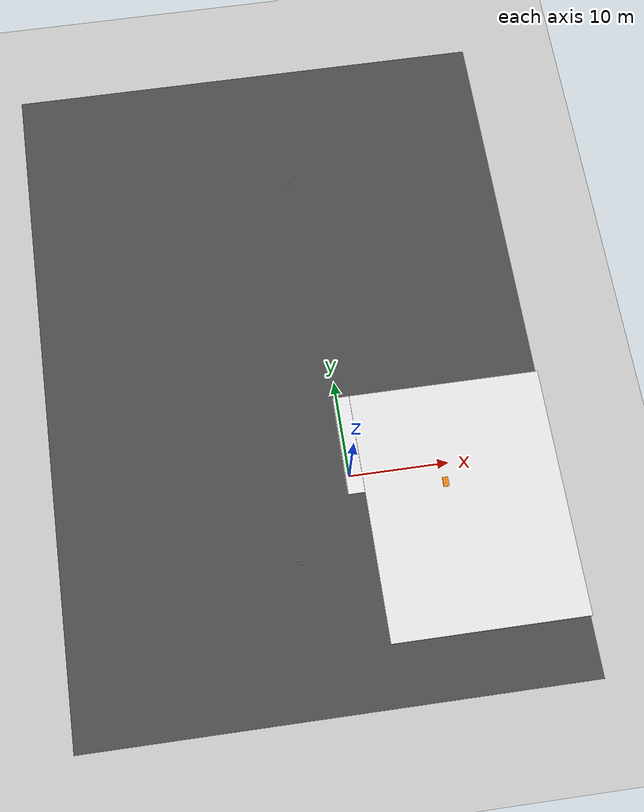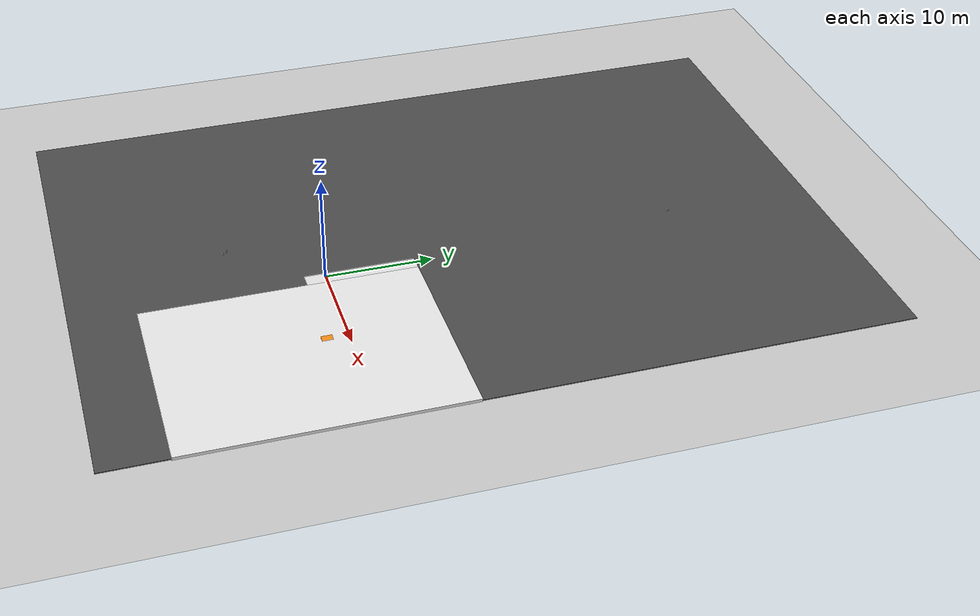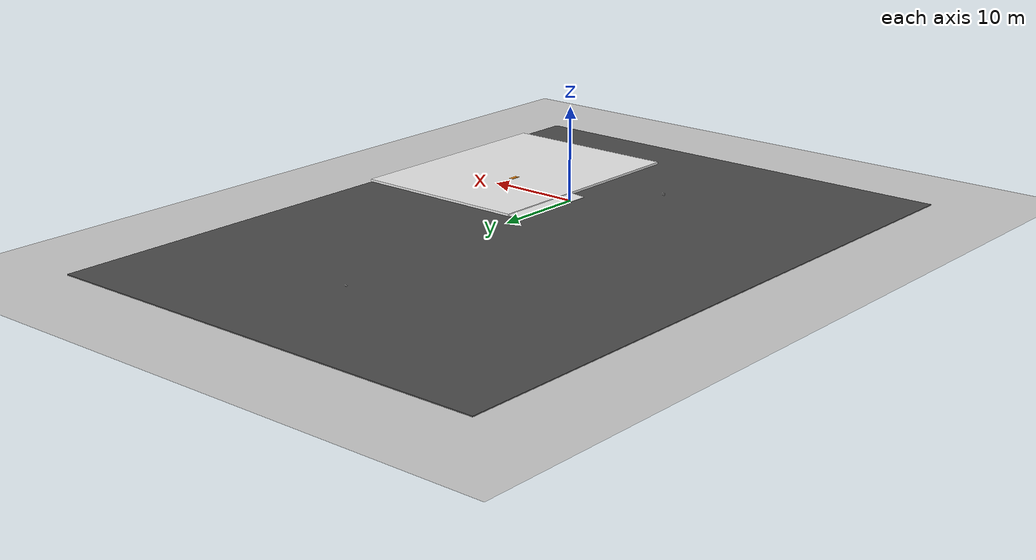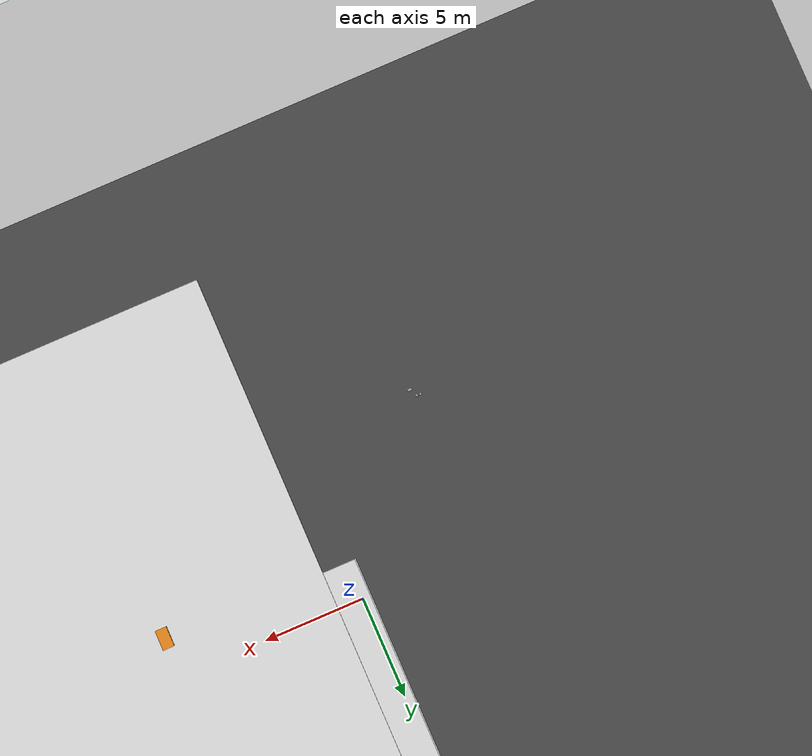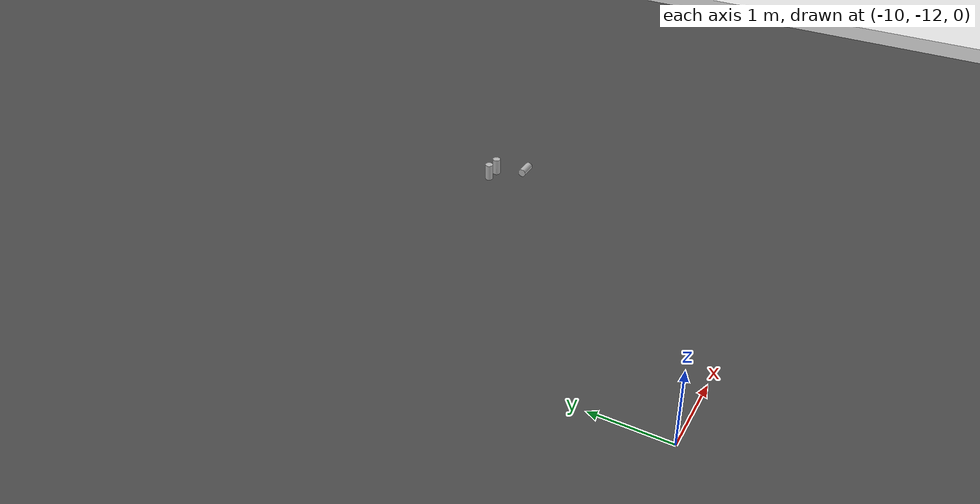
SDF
<sdf version="1.7">
 <world name="default">
  <light name="sun" type="directional">
   <pose>0 0 10 0 -0 0</pose>
   <diffuse>0.8 0.8 0.8 1</diffuse>
   <specular>0.2 0.2 0.2 1</specular>
   <attenuation>
    <range>1000</range>
    <constant>0.9</constant>
    <linear>0.01</linear>
    <quadratic>0.001</quadratic>
   </attenuation>
   <direction>-0.5 0.1 -0.9</direction>
   <spot><inner_angle>0</inner_angle><outer_angle>0</outer_angle><falloff>0</falloff></spot>
  </light>
  <model name="ground_plane">
   <static>1</static>
   <link name="link">
    <collision name="collision">
     <geometry><plane><normal>0 0 1</normal><size>100 100</size></plane></geometry>
     <surface>
      <contact><collide_bitmask>65535</collide_bitmask></contact>
      <friction><ode><mu>100</mu><mu2>50</mu2></ode></friction>
     </surface>
    </collision>
    <visual name="visual">
     <cast_shadows>0</cast_shadows>
     <geometry><plane><normal>0 0 1</normal><size>100 100</size></plane></geometry>
     <material>
      <script><uri>file://media/materials/scripts/gazebo.material</uri><name>Gazebo/Grey</name></script>
     </material>
    </visual>
   </link>
  </model>
  <gravity>0 0 -9.8</gravity>
  <magnetic_field>6e-06 2.3e-05 -4.2e-05</magnetic_field>
  <atmosphere type="adiabatic"/>
  <physics type="ode">
   <max_step_size>0.001</max_step_size>
   <real_time_factor>1</real_time_factor>
   <real_time_update_rate>1000</real_time_update_rate>
  </physics>
  <scene><ambient>0.4 0.4 0.4 1</ambient><background>0.7 0.7 0.7 1</background><shadows>1</shadows></scene>
  <spherical_coordinates>
   <surface_model>EARTH_WGS84</surface_model>
   <latitude_deg>0</latitude_deg>
   <longitude_deg>0</longitude_deg>
   <elevation>0</elevation>
   <heading_deg>0</heading_deg>
  </spherical_coordinates>
  <model name="kitchen_floor_clone">
   <link name="link">
    <inertial>
     <mass>1</mass>
     <inertia><ixx>1</ixx><ixy>0</ixy><ixz>0</ixz><iyy>1</iyy><iyz>0</iyz><izz>1</izz></inertia>
    </inertial>
    <visual name="visual">
     <geometry><box><size>19.4916 25.3453 0.288862</size></box></geometry>
     <material>
      <script><uri>file://media/materials/scripts/gazebo.material</uri><name>Gazebo/White</name></script>
      <shader type="pixel"><normal_map>__default__</normal_map></shader>
      <ambient>1 1 1 1</ambient>
      <diffuse>1 1 1 1</diffuse>
      <specular>0 0 0 1</specular>
      <emissive>0 0 0 1</emissive>
     </material>
    </visual>
    <collision name="collision">
     <geometry><box><size>19.4916 25.3453 0.288862</size></box></geometry>
     <surface>
      <friction>
       <ode><mu>1e+14</mu><mu2>1e+17</mu2><fdir1>0 0 0</fdir1><slip1>0</slip1><slip2>0</slip2></ode>
       <torsional>
        <coefficient>1</coefficient>
        <patch_radius>0</patch_radius>
        <surface_radius>0</surface_radius>
        <use_patch_radius>1</use_patch_radius>
        <ode><slip>0</slip></ode>
       </torsional>
      </friction>
      <bounce><restitution_coefficient>0</restitution_coefficient><threshold>1e+06</threshold></bounce>
      <contact>
       <collide_without_contact>0</collide_without_contact>
       <collide_without_contact_bitmask>1</collide_without_contact_bitmask>
       <collide_bitmask>1</collide_bitmask>
       <ode>
        <soft_cfm>0</soft_cfm>
        <soft_erp>0.2</soft_erp>
        <kp>1e+13</kp>
        <kd>1</kd>
        <max_vel>0.01</max_vel>
        <min_depth>0</min_depth>
       </ode>
       <bullet>
        <split_impulse>1</split_impulse>
        <split_impulse_penetration_threshold>-0.01</split_impulse_penetration_threshold>
        <soft_cfm>0</soft_cfm>
        <soft_erp>0.2</soft_erp>
        <kp>1e+13</kp>
        <kd>1</kd>
       </bullet>
      </contact>
     </surface>
    </collision>
   </link>
   <static>1</static>
   <pose>10.9999 -4.36608 0.160761 0 -0 0</pose>
  </model>
  <model name="asphalt_plane">
   <static>1</static>
   <link name="link">
    <collision name="collision"><geometry><box><size>49.8592 70.8248 0.1</size></box></geometry></collision>
    <visual name="visual">
     <cast_shadows>0</cast_shadows>
     <geometry><box><size>49.8592 70.8248 0.1</size></box></geometry>
     <material>
      <script>
       <uri>model://asphalt_plane/materials/scripts</uri>
       <uri>model://asphalt_plane/materials/textures</uri>
       <name>vrc/asphalt</name>
      </script>
     </material>
    </visual>
   </link>
   <pose>-4.35504 12.4315 0 0 -0 0</pose>
  </model>
  <model name="beer">
   <link name="link">
    <pose>0 0 0.115 0 -0 0</pose>
    <inertial>
     <mass>0.39</mass>
     <inertia><ixx>0.00058</ixx><ixy>0</ixy><ixz>0</ixz><iyy>0.00058</iyy><iyz>0</iyz><izz>0.00019</izz></inertia>
    </inertial>
    <collision name="collision">
     <geometry><cylinder><radius>0.055</radius><length>0.23</length></cylinder></geometry>
    </collision>
    <visual name="visual">
     <geometry><cylinder><radius>0.055</radius><length>0.23</length></cylinder></geometry>
     <material>
      <script>
       <uri>model://beer/materials/scripts</uri>
       <uri>model://beer/materials/textures</uri>
       <name>Beer/Diffuse</name>
      </script>
     </material>
    </visual>
   </link>
   <pose>-1.21363 33.6408 0.125 1.57079 1.01249 -1.76371</pose>
  </model>
  <model name="beer_0">
   <link name="link">
    <pose>0 0 0.115 0 -0 0</pose>
    <inertial>
     <mass>0.39</mass>
     <inertia><ixx>0.00058</ixx><ixy>0</ixy><ixz>0</ixz><iyy>0.00058</iyy><iyz>0</iyz><izz>0.00019</izz></inertia>
    </inertial>
    <collision name="collision">
     <geometry><cylinder><radius>0.055</radius><length>0.23</length></cylinder></geometry>
    </collision>
    <visual name="visual">
     <geometry><cylinder><radius>0.055</radius><length>0.23</length></cylinder></geometry>
     <material>
      <script>
       <uri>model://beer/materials/scripts</uri>
       <uri>model://beer/materials/textures</uri>
       <name>Beer/Diffuse</name>
      </script>
     </material>
    </visual>
   </link>
   <pose>-6.36612 -7.82661 0.050005 2.4e-05 9.1e-05 -3.2e-05</pose>
  </model>
  <model name="beer_0_clone">
   <link name="link">
    <pose>0 0 0.115 0 -0 0</pose>
    <inertial>
     <mass>0.39</mass>
     <inertia><ixx>0.00058</ixx><ixy>0</ixy><ixz>0</ixz><iyy>0.00058</iyy><iyz>0</iyz><izz>0.00019</izz></inertia>
    </inertial>
    <collision name="collision">
     <geometry><cylinder><radius>0.055</radius><length>0.23</length></cylinder></geometry>
    </collision>
    <visual name="visual">
     <geometry><cylinder><radius>0.055</radius><length>0.23</length></cylinder></geometry>
     <material>
      <script>
       <uri>model://beer/materials/scripts</uri>
       <uri>model://beer/materials/textures</uri>
       <name>Beer/Diffuse</name>
      </script>
     </material>
    </visual>
   </link>
   <pose>-6.17783 -7.84577 0.050005 2.5e-05 9.5e-05 8.8e-05</pose>
  </model>
  <model name="beer_0_clone_0">
   <link name="link">
    <pose>0 0 0.115 0 -0 0</pose>
    <inertial>
     <mass>0.39</mass>
     <inertia><ixx>0.00058</ixx><ixy>0</ixy><ixz>0</ixz><iyy>0.00058</iyy><iyz>0</iyz><izz>0.00019</izz></inertia>
    </inertial>
    <collision name="collision">
     <geometry><cylinder><radius>0.055</radius><length>0.23</length></cylinder></geometry>
    </collision>
    <visual name="visual">
     <geometry><cylinder><radius>0.055</radius><length>0.23</length></cylinder></geometry>
     <material>
      <script>
       <uri>model://beer/materials/scripts</uri>
       <uri>model://beer/materials/textures</uri>
       <name>Beer/Diffuse</name>
      </script>
     </material>
    </visual>
   </link>
   <pose>-5.86352 -8.21778 0.10499 0.001081 -1.57075 -0.001087</pose>
  </model>
  <model name="obstacle_box_2_clone_clone_clone">
   <link name="link">
    <inertial>
     <inertia><ixx>1.9266</ixx><ixy>0</ixy><ixz>0</ixz><iyy>69.5193</iyy><iyz>0</iyz><izz>71.4454</izz></inertia>
     <mass>7.9762</mass>
    </inertial>
    <pose>2.10295 -0.231385 0.062451 0.078784 -0 0</pose>
    <visual name="visual">
     <geometry><box><size>10.2269 1.70239 0.019709</size></box></geometry>
     <material>
      <script><uri>file://media/materials/scripts/gazebo.material</uri><name>Gazebo/White</name></script>
      <shader type="pixel"><normal_map>__default__</normal_map></shader>
      <emissive>0 0 0 1</emissive>
      <ambient>1 1 1 1</ambient>
      <diffuse>1 1 1 1</diffuse>
      <specular>0 0 0 1</specular>
     </material>
    </visual>
    <collision name="collision">
     <geometry><box><size>10.2269 1.70239 0.019709</size></box></geometry>
     <surface>
      <friction>
       <ode><mu>1</mu><mu2>1</mu2><fdir1>0 0 0</fdir1><slip1>0</slip1><slip2>0</slip2></ode>
       <torsional>
        <coefficient>1</coefficient>
        <patch_radius>0</patch_radius>
        <surface_radius>0</surface_radius>
        <use_patch_radius>1</use_patch_radius>
        <ode><slip>0</slip></ode>
       </torsional>
      </friction>
      <bounce><restitution_coefficient>0</restitution_coefficient><threshold>1e+06</threshold></bounce>
      <contact>
       <collide_without_contact>0</collide_without_contact>
       <collide_without_contact_bitmask>1</collide_without_contact_bitmask>
       <collide_bitmask>1</collide_bitmask>
       <ode>
        <soft_cfm>0</soft_cfm>
        <soft_erp>0.2</soft_erp>
        <kp>1e+13</kp>
        <kd>1</kd>
        <max_vel>0.01</max_vel>
        <min_depth>0</min_depth>
       </ode>
       <bullet>
        <split_impulse>1</split_impulse>
        <split_impulse_penetration_threshold>-0.01</split_impulse_penetration_threshold>
        <soft_cfm>0</soft_cfm>
        <soft_erp>0.2</soft_erp>
        <kp>1e+13</kp>
        <kd>1</kd>
       </bullet>
      </contact>
     </surface>
    </collision>
   </link>
   <link name="link_clone">
    <inertial>
     <inertia><ixx>1.90054</ixx><ixy>0</ixy><ixz>0</ixz><iyy>68.2086</iyy><iyz>0</iyz><izz>70.1086</izz></inertia>
     <mass>7.90982</mass>
    </inertial>
    <pose>2.13858 -0.231576 -0 0 -0 0.000112</pose>
    <visual name="visual">
     <geometry><box><size>10.1725 1.69792 0.019709</size></box></geometry>
     <material>
      <script><uri>file://media/materials/scripts/gazebo.material</uri><name>Gazebo/White</name></script>
      <shader type="pixel"><normal_map>__default__</normal_map></shader>
      <emissive>0 0 0 1</emissive>
      <ambient>1 1 1 1</ambient>
      <diffuse>1 1 1 1</diffuse>
      <specular>0 0 0 1</specular>
     </material>
    </visual>
    <collision name="collision">
     <geometry><box><size>10.1725 1.69792 0.019709</size></box></geometry>
     <surface>
      <friction>
       <ode><mu>1</mu><mu2>1</mu2><fdir1>0 0 0</fdir1><slip1>0</slip1><slip2>0</slip2></ode>
       <torsional>
        <coefficient>1</coefficient>
        <patch_radius>0</patch_radius>
        <surface_radius>0</surface_radius>
        <use_patch_radius>1</use_patch_radius>
        <ode><slip>0</slip></ode>
       </torsional>
      </friction>
      <bounce><restitution_coefficient>0</restitution_coefficient><threshold>1e+06</threshold></bounce>
      <contact>
       <collide_without_contact>0</collide_without_contact>
       <collide_without_contact_bitmask>1</collide_without_contact_bitmask>
       <collide_bitmask>1</collide_bitmask>
       <ode>
        <soft_cfm>0</soft_cfm>
        <soft_erp>0.2</soft_erp>
        <kp>1e+13</kp>
        <kd>1</kd>
        <max_vel>0.01</max_vel>
        <min_depth>0</min_depth>
       </ode>
       <bullet>
        <split_impulse>1</split_impulse>
        <split_impulse_penetration_threshold>-0.01</split_impulse_penetration_threshold>
        <soft_cfm>0</soft_cfm>
        <soft_erp>0.2</soft_erp>
        <kp>1e+13</kp>
        <kd>1</kd>
       </bullet>
      </contact>
     </surface>
    </collision>
   </link>
   <link name="link_clone_clone">
    <inertial>
     <inertia>
      <ixx>0.000738714</ixx>
      <ixy>0</ixy>
      <ixz>0</ixz>
      <iyy>4.93943</iyy>
      <iyz>0</iyz>
      <izz>4.94013</izz>
     </inertia>
     <mass>0.572516</mass>
    </inertial>
    <pose>2.13829 0.595747 0.057529 1.5708 -0 0.000224</pose>
    <visual name="visual">
     <geometry><box><size>10.175 0.122862 0.019709</size></box></geometry>
     <material>
      <script><uri>file://media/materials/scripts/gazebo.material</uri><name>Gazebo/White</name></script>
      <shader type="pixel"><normal_map>__default__</normal_map></shader>
      <emissive>0 0 0 1</emissive>
      <ambient>1 1 1 1</ambient>
      <diffuse>1 1 1 1</diffuse>
      <specular>0 0 0 1</specular>
     </material>
    </visual>
    <collision name="collision">
     <geometry><box><size>10.175 0.122862 0.019709</size></box></geometry>
     <surface>
      <friction>
       <ode><mu>1</mu><mu2>1</mu2><fdir1>0 0 0</fdir1><slip1>0</slip1><slip2>0</slip2></ode>
       <torsional>
        <coefficient>1</coefficient>
        <patch_radius>0</patch_radius>
        <surface_radius>0</surface_radius>
        <use_patch_radius>1</use_patch_radius>
        <ode><slip>0</slip></ode>
       </torsional>
      </friction>
      <bounce><restitution_coefficient>0</restitution_coefficient><threshold>1e+06</threshold></bounce>
      <contact>
       <collide_without_contact>0</collide_without_contact>
       <collide_without_contact_bitmask>1</collide_without_contact_bitmask>
       <collide_bitmask>1</collide_bitmask>
       <ode>
        <soft_cfm>0</soft_cfm>
        <soft_erp>0.2</soft_erp>
        <kp>1e+13</kp>
        <kd>1</kd>
        <max_vel>0.01</max_vel>
        <min_depth>0</min_depth>
       </ode>
       <bullet>
        <split_impulse>1</split_impulse>
        <split_impulse_penetration_threshold>-0.01</split_impulse_penetration_threshold>
        <soft_cfm>0</soft_cfm>
        <soft_erp>0.2</soft_erp>
        <kp>1e+13</kp>
        <kd>1</kd>
       </bullet>
      </contact>
     </surface>
    </collision>
   </link>
   <static>0</static>
   <pose>0.636488 5.33953 0.063748 0 0 -1.5708</pose>
  </model>
  <model name="triangular_ramp">
   <static>1</static>
   <link name="link">
    <pose>0 0 0.0803805 0 0.0803805 0</pose>
    <inertial>
     <mass>10.0</mass>
     <inertia><ixx>1.0</ixx><ixy>0</ixy><ixz>0</ixz><iyy>1.0</iyy><iyz>0</iyz><izz>1.0</izz></inertia>
    </inertial>
    <visual name="visual">
     <geometry><box><size>2.0 1.0 0.160761</size></box></geometry>
     <material>
      <script><uri>file://media/materials/scripts/gazebo.material</uri><name>Gazebo/Orange</name></script>
     </material>
    </visual>
    <collision name="collision">
     <geometry><box><size>2.0 1.0 0.160761</size></box></geometry>
     <surface><friction><ode><mu>1.0</mu><mu2>1.0</mu2></ode></friction></surface>
    </collision>
   </link>
   <pose>10.0 -2.0 0.0803805 0 0.0802 0</pose>
  </model>
 </world>
</sdf>
